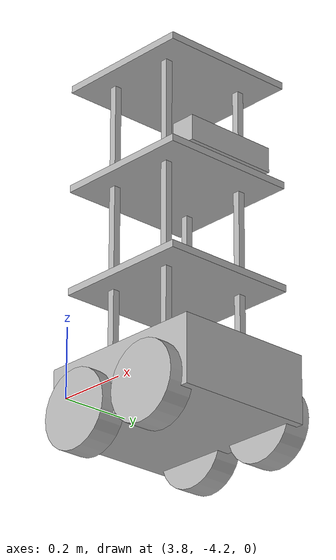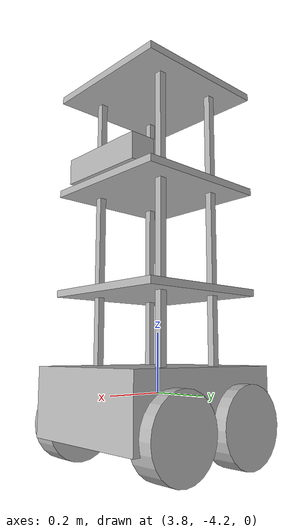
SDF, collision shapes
<?xml version='1.0'?>
<sdf version='1.4'>
  <model name="my_robot">
      <pose>4 -4 0.0 0 -0 0</pose>
      <static>0</static>
      <link name='chassis'>
        <inertial>
          <mass>14</mass>
          <inertia>
            <ixx>0.3338</ixx>
            <ixy>0</ixy>
            <ixz>0</ixz>
            <iyy>0.4783</iyy>
            <iyz>0</iyz>
            <izz>0.3338</izz>
          </inertia>
        </inertial>
        <collision name='collision'>
          <geometry>
            <box>
              <size>0.501 0.4 0.19</size>
            </box>
          </geometry>
          <max_contacts>10</max_contacts>
          <surface>
            <bounce/>
            <friction>
              <ode/>
            </friction>
            <contact>
              <ode/>
            </contact>
          </surface>
        </collision>
        <visual name='visual'>
          <geometry>
            <mesh>
              <uri>model://pioneer3at/meshes/chassis.dae</uri>
            </mesh>
          </geometry>
        </visual>
        <velocity_decay>
          <linear>0</linear>
          <angular>0</angular>
        </velocity_decay>
        <self_collide>0</self_collide>
        <kinematic>0</kinematic>
        <gravity>1</gravity>
      </link>
      <link name='right_front_wheel'>
        <pose>0.125 -0.201 -0.06 1.5707 -0 0</pose>
        <collision name='collision'>
          <geometry>
            <cylinder>
              <radius>0.11</radius>
              <length>0.075</length>
            </cylinder>
          </geometry>
          <surface>
            <friction>
              <ode>
                <mu>1</mu>
                <mu2>1</mu2>
                <slip1>0.5</slip1>
                <slip2>0</slip2>
              </ode>
            </friction>
            <bounce/>
            <contact>
              <ode/>
            </contact>
          </surface>
          <max_contacts>10</max_contacts>
        </collision>
        <visual name='visual'>
          <geometry>
            <mesh>
              <uri>model://pioneer3at/meshes/wheel.dae</uri>
            </mesh>
          </geometry>
        </visual>
        <velocity_decay>
          <linear>0</linear>
          <angular>0</angular>
        </velocity_decay>
        <self_collide>0</self_collide>
        <inertial>
          <inertia>
            <ixx>1</ixx>
            <ixy>0</ixy>
            <ixz>0</ixz>
            <iyy>1</iyy>
            <iyz>0</iyz>
            <izz>1</izz>
          </inertia>
          <mass>1</mass>
        </inertial>
        <kinematic>0</kinematic>
        <gravity>1</gravity>
      </link>
      <link name='left_front_wheel'>
        <pose>0.125 0.201 -0.06 1.5707 -0 0</pose>
        <collision name='collision'>
          <geometry>
            <cylinder>
              <radius>0.11</radius>
              <length>0.075</length>
            </cylinder>
          </geometry>
          <surface>
            <friction>
              <ode>
                <mu>1</mu>
                <mu2>1</mu2>
                <slip1>0.5</slip1>
                <slip2>0</slip2>
              </ode>
            </friction>
            <bounce/>
            <contact>
              <ode/>
            </contact>
          </surface>
          <max_contacts>10</max_contacts>
        </collision>
        <visual name='visual'>
          <geometry>
            <mesh>
              <uri>model://pioneer3at/meshes/wheel.dae</uri>
            </mesh>
          </geometry>
        </visual>
        <velocity_decay>
          <linear>0</linear>
          <angular>0</angular>
        </velocity_decay>
        <self_collide>0</self_collide>
        <inertial>
          <inertia>
            <ixx>1</ixx>
            <ixy>0</ixy>
            <ixz>0</ixz>
            <iyy>1</iyy>
            <iyz>0</iyz>
            <izz>1</izz>
          </inertia>
          <mass>1</mass>
        </inertial>
        <kinematic>0</kinematic>
        <gravity>1</gravity>
      </link>

      <link name='c1'>
        <pose>0 0 0.3 0 -0 0</pose>
        <inertial>
          <mass>1</mass>
          <inertia>
            <ixx>0.3338</ixx>
            <ixy>0</ixy>
            <ixz>0</ixz>
            <iyy>0.4783</iyy>
            <iyz>0</iyz>
            <izz>0.3338</izz>
          </inertia>
        </inertial>
        <collision name='collision'>
          <geometry>
            	<box>
            	<size>0.4 0.4 0.02</size>
            	</box>
          </geometry>
          <max_contacts>10</max_contacts>
          <surface>
            <bounce/>
            <friction>
              <ode/>
            </friction>
            <contact>
              <ode/>
            </contact>
          </surface>
        </collision>
        <visual name='visual'>
          <geometry>
            	<box>
            	<size>0.4 0.4 0.02</size>
            	</box>
          </geometry>
        </visual>
        <velocity_decay>
          <linear>0</linear>
          <angular>0</angular>
        </velocity_decay>
        <self_collide>0</self_collide>
        <kinematic>0</kinematic>
        <gravity>1</gravity>
      </link>
    <joint name="c1_joint" type="revolute">
      <child>c1</child>
      <parent>chassis</parent>
      <axis>
        <xyz>0 0 1</xyz>
        <limit>
          <upper>0</upper>
          <lower>0</lower>
        </limit>
      </axis>
    </joint>

      <link name='c2'>
        <pose>0 0 0.6 0 -0 0</pose>
        <inertial>
          <mass>1</mass>
          <inertia>
            <ixx>0.3338</ixx>
            <ixy>0</ixy>
            <ixz>0</ixz>
            <iyy>0.4783</iyy>
            <iyz>0</iyz>
            <izz>0.3338</izz>
          </inertia>
        </inertial>
        <collision name='collision'>
          <geometry>
            	<box>
            	<size>0.4 0.4 0.02</size>
            	</box>
          </geometry>
          <max_contacts>10</max_contacts>
          <surface>
            <bounce/>
            <friction>
              <ode/>
            </friction>
            <contact>
              <ode/>
            </contact>
          </surface>
        </collision>
        <visual name='visual'>
          <geometry>
            	<box>
            	<size>0.4 0.4 0.02</size>
            	</box>
          </geometry>
        </visual>
        <velocity_decay>
          <linear>0</linear>
          <angular>0</angular>
        </velocity_decay>
        <self_collide>0</self_collide>
        <kinematic>0</kinematic>
        <gravity>1</gravity>
      </link>
    <joint name="c2_joint" type="revolute">
      <child>c2</child>
      <parent>chassis</parent>
      <axis>
        <xyz>0 0 1</xyz>
        <limit>
          <upper>0</upper>
          <lower>0</lower>
        </limit>
      </axis>
    </joint>

      <link name='c3'>
        <pose>0 0 0.9 0 -0 0</pose>
        <inertial>
          <mass>1</mass>
          <inertia>
            <ixx>0.3338</ixx>
            <ixy>0</ixy>
            <ixz>0</ixz>
            <iyy>0.4783</iyy>
            <iyz>0</iyz>
            <izz>0.3338</izz>
          </inertia>
        </inertial>
        <collision name='collision'>
          <geometry>
            	<box>
            	<size>0.4 0.4 0.02</size>
            	</box>
          </geometry>
          <max_contacts>10</max_contacts>
          <surface>
            <bounce/>
            <friction>
              <ode/>
            </friction>
            <contact>
              <ode/>
            </contact>
          </surface>
        </collision>
        <visual name='visual'>
          <geometry>
            	<box>
            	<size>0.4 0.4 0.02</size>
            	</box>
          </geometry>
        </visual>
        <velocity_decay>
          <linear>0</linear>
          <angular>0</angular>
        </velocity_decay>
        <self_collide>0</self_collide>
        <kinematic>0</kinematic>
        <gravity>1</gravity>
      </link>
    <joint name="c3_joint" type="revolute">
      <child>c3</child>
      <parent>chassis</parent>
      <axis>
        <xyz>0 0 1</xyz>
        <limit>
          <upper>0</upper>
          <lower>0</lower>
        </limit>
      </axis>
    </joint>

      <link name='c4'>
        <pose>0.1 0.13 0.46 0 -0 0</pose>
        <inertial>
          <mass>1</mass>
          <inertia>
            <ixx>0.3338</ixx>
            <ixy>0</ixy>
            <ixz>0</ixz>
            <iyy>0.4783</iyy>
            <iyz>0</iyz>
            <izz>0.3338</izz>
          </inertia>
        </inertial>
        <collision name='collision'>
          <geometry>
            	<box>
            	<size>0.02 0.02 0.90</size>
            	</box>
          </geometry>
          <max_contacts>10</max_contacts>
          <surface>
            <bounce/>
            <friction>
              <ode/>
            </friction>
            <contact>
              <ode/>
            </contact>
          </surface>
        </collision>
        <visual name='visual'>
          <geometry>
            	<box>
            	<size>0.02 0.02 0.90</size>
            	</box>
          </geometry>
        </visual>
        <velocity_decay>
          <linear>0</linear>
          <angular>0</angular>
        </velocity_decay>
        <self_collide>0</self_collide>
        <kinematic>0</kinematic>
        <gravity>1</gravity>
      </link>
    <joint name="c4_joint" type="revolute">
      <child>c4</child>
      <parent>chassis</parent>
      <axis>
        <xyz>0 0 1</xyz>
        <limit>
          <upper>0</upper>
          <lower>0</lower>
        </limit>
      </axis>
    </joint>

      <link name='c5'>
        <pose>-0.1 0.13 0.46 0 -0 0</pose>
        <inertial>
          <mass>1</mass>
          <inertia>
            <ixx>0.3338</ixx>
            <ixy>0</ixy>
            <ixz>0</ixz>
            <iyy>0.4783</iyy>
            <iyz>0</iyz>
            <izz>0.3338</izz>
          </inertia>
        </inertial>
        <collision name='collision'>
          <geometry>
            	<box>
            	<size>0.02 0.02 0.90</size>
            	</box>
          </geometry>
          <max_contacts>10</max_contacts>
          <surface>
            <bounce/>
            <friction>
              <ode/>
            </friction>
            <contact>
              <ode/>
            </contact>
          </surface>
        </collision>
        <visual name='visual'>
          <geometry>
            	<box>
            	<size>0.02 0.02 0.90</size>
            	</box>
          </geometry>
        </visual>
        <velocity_decay>
          <linear>0</linear>
          <angular>0</angular>
        </velocity_decay>
        <self_collide>0</self_collide>
        <kinematic>0</kinematic>
        <gravity>1</gravity>
      </link>
    <joint name="c5_joint" type="revolute">
      <child>c5</child>
      <parent>chassis</parent>
      <axis>
        <xyz>0 0 1</xyz>
        <limit>
          <upper>0</upper>
          <lower>0</lower>
        </limit>
      </axis>
    </joint>

      <link name='c6'>
        <pose>-0.1 -0.13 0.46 0 -0 0</pose>
        <inertial>
          <mass>1</mass>
          <inertia>
            <ixx>0.3338</ixx>
            <ixy>0</ixy>
            <ixz>0</ixz>
            <iyy>0.4783</iyy>
            <iyz>0</iyz>
            <izz>0.3338</izz>
          </inertia>
        </inertial>
        <collision name='collision'>
          <geometry>
            	<box>
            	<size>0.02 0.02 0.90</size>
            	</box>
          </geometry>
          <max_contacts>10</max_contacts>
          <surface>
            <bounce/>
            <friction>
              <ode/>
            </friction>
            <contact>
              <ode/>
            </contact>
          </surface>
        </collision>
        <visual name='visual'>
          <geometry>
            	<box>
            	<size>0.02 0.02 0.90</size>
            	</box>
          </geometry>
        </visual>
        <velocity_decay>
          <linear>0</linear>
          <angular>0</angular>
        </velocity_decay>
        <self_collide>0</self_collide>
        <kinematic>0</kinematic>
        <gravity>1</gravity>
      </link>
    <joint name="c6_joint" type="revolute">
      <child>c6</child>
      <parent>chassis</parent>
      <axis>
        <xyz>0 0 1</xyz>
        <limit>
          <upper>0</upper>
          <lower>0</lower>
        </limit>
      </axis>
    </joint>

      <link name='c7'>
        <pose>0.1 -0.13 0.46 0 -0 0</pose>
        <inertial>
          <mass>1</mass>
          <inertia>
            <ixx>0.3338</ixx>
            <ixy>0</ixy>
            <ixz>0</ixz>
            <iyy>0.4783</iyy>
            <iyz>0</iyz>
            <izz>0.3338</izz>
          </inertia>
        </inertial>
        <collision name='collision'>
          <geometry>
            	<box>
            	<size>0.02 0.02 0.90</size>
            	</box>
          </geometry>
          <max_contacts>10</max_contacts>
          <surface>
            <bounce/>
            <friction>
              <ode/>
            </friction>
            <contact>
              <ode/>
            </contact>
          </surface>
        </collision>
        <visual name='visual'>
          <geometry>
            	<box>
            	<size>0.02 0.02 0.90</size>
            	</box>
          </geometry>
        </visual>
        <velocity_decay>
          <linear>0</linear>
          <angular>0</angular>
        </velocity_decay>
        <self_collide>0</self_collide>
        <kinematic>0</kinematic>
        <gravity>1</gravity>
      </link>
    <joint name="c7_joint" type="revolute">
      <child>c7</child>
      <parent>chassis</parent>
      <axis>
        <xyz>0 0 1</xyz>
        <limit>
          <upper>0</upper>
          <lower>0</lower>
        </limit>
      </axis>
    </joint>

      <link name='right_rear_wheel'>
        <pose>-0.125 -0.201 -0.06 1.5707 -0 0</pose>
        <collision name='collision'>
          <geometry>
            <cylinder>
              <radius>0.11</radius>
              <length>0.075</length>
            </cylinder>
          </geometry>
          <surface>
            <friction>
              <ode>
                <mu>1</mu>
                <mu2>1</mu2>
                <slip1>0.5</slip1>
                <slip2>0</slip2>
              </ode>
            </friction>
            <bounce/>
            <contact>
              <ode/>
            </contact>
          </surface>
          <max_contacts>10</max_contacts>
        </collision>
        <visual name='visual'>
          <geometry>
            <mesh>
              <uri>model://pioneer3at/meshes/wheel.dae</uri>
            </mesh>
          </geometry>
        </visual>
        <velocity_decay>
          <linear>0</linear>
          <angular>0</angular>
        </velocity_decay>
        <self_collide>0</self_collide>
        <inertial>
          <inertia>
            <ixx>1</ixx>
            <ixy>0</ixy>
            <ixz>0</ixz>
            <iyy>1</iyy>
            <iyz>0</iyz>
            <izz>1</izz>
          </inertia>
          <mass>1</mass>
        </inertial>
        <kinematic>0</kinematic>
        <gravity>1</gravity>
      </link>
      <link name='left_rear_wheel'>
        <pose>-0.125 0.201 -0.06 1.5707 -0 0</pose>
        <collision name='collision'>
          <geometry>
            <cylinder>
              <radius>0.11</radius>
              <length>0.075</length>
            </cylinder>
          </geometry>
          <surface>
            <friction>
              <ode>
                <mu>1</mu>
                <mu2>1</mu2>
                <slip1>0.5</slip1>
                <slip2>0</slip2>
              </ode>
            </friction>
            <bounce/>
            <contact>
              <ode/>
            </contact>
          </surface>
          <max_contacts>10</max_contacts>
        </collision>
        <visual name='visual'>
          <geometry>
            <mesh>
              <uri>model://pioneer3at/meshes/wheel.dae</uri>
            </mesh>
          </geometry>
        </visual>
        <velocity_decay>
          <linear>0</linear>
          <angular>0</angular>
        </velocity_decay>
        <self_collide>0</self_collide>
        <inertial>
          <inertia>
            <ixx>1</ixx>
            <ixy>0</ixy>
            <ixz>0</ixz>
            <iyy>1</iyy>
            <iyz>0</iyz>
            <izz>1</izz>
          </inertia>
          <mass>1</mass>
        </inertial>
        <kinematic>0</kinematic>
        <gravity>1</gravity>
      </link>
      <joint name='right_front' type='revolute'>
        <pose>0 0 0 0 -0 0</pose>
        <child>right_front_wheel</child>
        <parent>chassis</parent>
        <axis>
          <xyz>0 1 0</xyz>
          <limit>
            <lower>-1e+16</lower>
            <upper>1e+16</upper>
          </limit>
        </axis>
      </joint>
      <joint name='right_rear' type='revolute'>
        <pose>0 0 0 0 -0 0</pose>
        <child>right_rear_wheel</child>
        <parent>chassis</parent>
        <axis>
          <xyz>0 1 0</xyz>
          <limit>
            <lower>-1e+16</lower>
            <upper>1e+16</upper>
          </limit>
        </axis>
      </joint>
      <joint name='left_front' type='revolute'>
        <pose>0 0 0 0 -0 0</pose>
        <child>left_front_wheel</child>
        <parent>chassis</parent>
        <axis>
          <xyz>0 1 0</xyz>
          <limit>
            <lower>-1e+16</lower>
            <upper>1e+16</upper>
          </limit>
        </axis>
      </joint>
      <joint name='left_rear' type='revolute'>
        <pose>0 0 0 0 -0 0</pose>
        <child>left_rear_wheel</child>
        <parent>chassis</parent>
        <axis>
          <xyz>0 1 0</xyz>
          <limit>
            <lower>-1e+16</lower>
            <upper>1e+16</upper>
          </limit>
        </axis>
      </joint>
      <plugin name='SkidSteerDrivePlugin' filename='libSkidSteerDrivePlugin.so'>
        <right_front>right_front</right_front>
        <right_rear>right_rear</right_rear>
        <left_front>left_front</left_front>
        <left_rear>left_rear</left_rear>
        <MaxForce>5.0</MaxForce>
      </plugin>

    <link name="hokuyo">
      <inertial>
        <mass>0.1</mass>
      </inertial>
      <visual name="visual">
        <geometry>
          <mesh>
            <uri>model://hokuyo/meshes/hokuyo.dae</uri>
          </mesh>
        </geometry>
      </visual>
      <sensor type="ray" name="head_hokuyo_sensor">
        <pose>0.15 0.0 0.13 0 0 0</pose>
        <ray>
          <scan>
            <horizontal>
              <samples>640</samples>
              <resolution>1</resolution>
              <min_angle>-2.26889</min_angle>
              <max_angle>2.268899</max_angle>
            </horizontal>
          </scan>
          <range>
            <min>0.08</min>
            <max>10</max>
            <resolution>0.01</resolution>
          </range>
        </ray>

        <plugin name="gazebo_ros_head_hokuyo_controller" filename="libgazebo_ros_laser.so"/>
	  <robotNamespace></robotNamespace>
<topicName>laser/scan</topicName>
        <always_on>1</always_on>
        <update_rate>30</update_rate>
        <visualize>true</visualize>
      </sensor>
    </link>

    <joint name="hokuyo_joint" type="revolute">
      <child>hokuyo</child>
      <parent>chassis</parent>
      <axis>
        <xyz>0 0 1</xyz>
        <limit>
          <upper>0</upper>
          <lower>0</lower>
        </limit>
      </axis>
    </joint>

    <include>
      <uri>model://kinect</uri>
      <pose>0.17 0.0 0.65 0 0 0</pose>
    </include>

    <joint name="kinect_joint" type="revolute">
      <child>kinect::link</child>
      <parent>chassis</parent>
      <axis>
        <xyz>0 0 1</xyz>
        <limit>
          <upper>0</upper>
          <lower>0</lower>
        </limit>
      </axis>
    </joint>
  </model>
</sdf>

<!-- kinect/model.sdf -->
<sdf version="1.5">
  <model name="kinect">
    <pose>0 0 0.036 0 0 0</pose>
    <link name="link">
      <inertial>
        <mass>0.1</mass>
      </inertial>
      <collision name="collision">
        <geometry>
          <box>
            <size>0.073000 0.276000 0.072000</size>
          </box>
        </geometry>
      </collision>
      <visual name="visual">
        <geometry>
          <mesh>
            <uri>model://../model_source/models/kinect/meshes/kinect.dae</uri>
          </mesh>
        </geometry>
      </visual>
      <sensor name="camera" type="depth">
        <update_rate>20</update_rate>
        <camera>
          <horizontal_fov>1.047198</horizontal_fov>
          <image>
            <width>640</width>
            <height>480</height>
            <format>R8G8B8</format>
          </image>
          <clip>
            <near>0.05</near>
            <far>3</far>
          </clip>
        </camera>
      </sensor>
    </link>
  </model>
</sdf>
